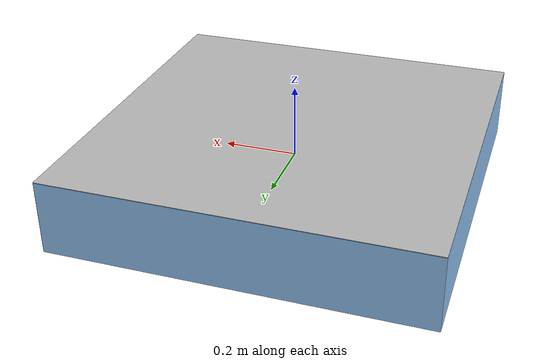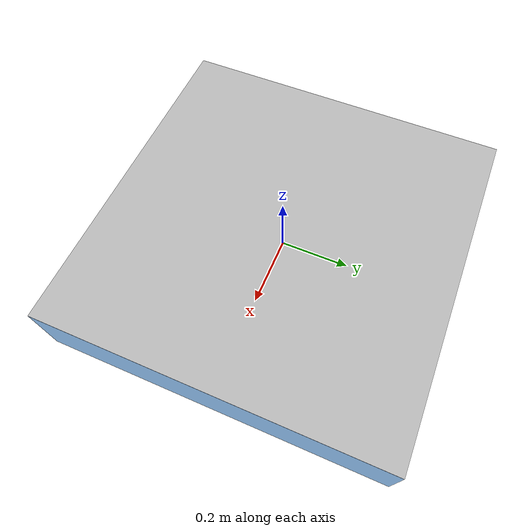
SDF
<?xml version='1.0'?>
<sdf version="1.9">
  <model name="delivery_landing_pad">
    <static>true</static>

    <link name="base_link">

      <visual name="box">
        <geometry>
          <box>
          <size>1 1 0.2</size>
          </box>
        </geometry>
        <material>
          <ambient>0.6 0.8 1.0 1</ambient>
          <diffuse>0.6 0.8 1.0 1</diffuse>
          <diffuse>0.1 0.1 0.1 1</diffuse>
        </material>
      </visual>

      <visual name="image">
      <pose> 0 0 0.101 0 0 0</pose>
        <geometry>
          <box>
          <size>1 1 0.001</size>
          </box>
        </geometry>
        <material>
          <pbr>
            <metal>
              <albedo_map>materials/textures/copter.png</albedo_map>
            </metal>
          </pbr>
        </material>
      </visual>

      <collision name="base_collision">
        <geometry>
          <box>
          <size>1 1 0.201</size>
          </box>
        </geometry>
      </collision>

<!-- models/box_with_image/materials/textures/runway.png -->

    </link>
  </model>
</sdf>
